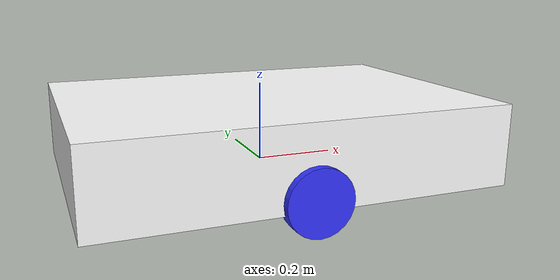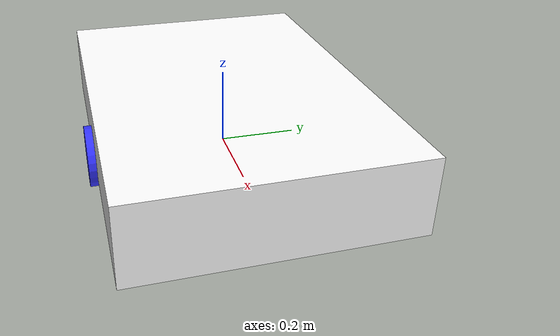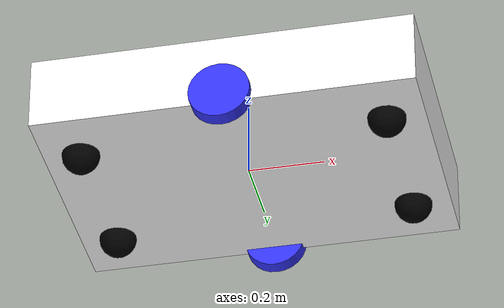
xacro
<?xml version="1.0"?>
<robot xmlns:xacro="http://www.ros.org/wiki/xacro">

    <xacro:include filename="inertial_macros.xacro"/>

    <material name="white">
        <color rgba="1 1 1 1" />
    </material>

    <material name="orange">
        <color rgba="1 0.3 0.1 1" />
    </material>

    <material name="blue">
        <color rgba="0.2 0.2 1 1" />
    </material>

    <material name="black">
        <color rgba="0 0 0 1" />
    </material>

    <material name="red">
        <color rgba="1 0 0 1" />
    </material>

    <!-- BASE LINK -->

    <link name="base_link">
	<origin xyz="0 0 0" />
    </link>

    <!-- CHASSIS LINK -->

    <joint name="chassis_joint" type="fixed">
        <parent link="base_link" />
        <child link="chassis" />
        <origin xyz="0 0 -0.025" />
    </joint>

    <link name="chassis">
        <visual>
            <origin xyz="0 0 0.1" />
            <geometry>
                <box size="1 0.7 0.2" />
            </geometry>
            <material name="white" />
        </visual>
        <collision>
            <origin xyz="0 0 0.1" />
            <geometry>
                <box size="1 0.7 0.2" />
            </geometry>
        </collision>
        <xacro:inertial_box mass="50" x="1" y="0.7" z="0.2">
            <origin xyz="0 0 0" rpy="0 0 0" />
        </xacro:inertial_box>
    </link>

    <gazebo reference="chassis">
	    <material>Gazebo/White</material>
    </gazebo>

    <!-- LEFT WHEEL LINK -->

    <joint name="left_wheel_joint" type="continuous">
        <parent link="base_link" />
        <child link="left_wheel" />
        <origin xyz="0 0.35 0" rpy="-${pi/2} 0 0" />
        <axis xyz="0 0 1" />
    </joint>

    <link name="left_wheel">
        <visual>
            <geometry>
                <cylinder radius="0.08" length="0.04" />
            </geometry>
            <material name="blue" />
        </visual>
        <collision>
            <geometry>
                <cylinder radius="0.08" length="0.04" />
            </geometry>
        </collision>
        <xacro:inertial_cylinder mass="5" length="0.04" radius="0.08">
            <origin xyz="0 0 0" rpy="0 0 0" />
        </xacro:inertial_cylinder>
    </link>

    <gazebo reference="left_wheel">
	    <material>Gazebo/Blue</material>
    </gazebo>

    <!-- RIGHT WHEEL LINK -->

    <joint name="right_wheel_joint" type="continuous">
        <parent link="base_link" />
        <child link="right_wheel" />
        <origin xyz="0 -0.35 0" rpy="${pi/2} 0 0" />
        <axis xyz="0 0 -1" />
    </joint>

    <link name="right_wheel">
        <visual>
            <geometry>
                <cylinder radius="0.08" length="0.04" />
            </geometry>
            <material name="blue" />
        </visual>
        <collision>
            <geometry>
                <cylinder radius="0.08" length="0.04" />
            </geometry>
        </collision>
        <xacro:inertial_cylinder mass="5" length="0.04" radius="0.08">
            <origin xyz="0 0 0" rpy="0 0 0" />
        </xacro:inertial_cylinder>
    </link>

    <gazebo reference="right_wheel">
	    <material>Gazebo/Blue</material>
    </gazebo>

    <!-- CASTER WHEEL LINKS -->

    <!-- caster_wheel_joint_fl LINK -->

    <joint name="caster_wheel_joint_fl" type="fixed">
        <parent link="chassis" />
        <child link="caster_wheel_fl" />
        <origin xyz="0.4 0.2 -0.005" />
    </joint>

    <link name="caster_wheel_fl">
        <visual>
            <geometry>
                <sphere radius="0.05"/>
            </geometry>
            <material name="black" />
        </visual>
	<collision>
            <geometry>
                <sphere radius="0.05"/>
            </geometry>
        </collision>
	 <xacro:inertial_sphere mass="1" radius="0.05">
            <origin xyz="0 0 0" rpy="0 0 0" />
        </xacro:inertial_sphere>
    </link>

    <gazebo reference="caster_wheel_fl">
	    <material>Gazebo/Black</material>
        <mu1 value="0.001"></mu1>
        <mu2 value="0.001"></mu2>
    </gazebo>

 <!-- caster_wheel_joint_fr LINK -->

    <joint name="caster_wheel_joint_fr" type="fixed">
        <parent link="chassis" />
        <child link="caster_wheel_fr" />
        <origin xyz="0.4 -0.2 -0.005" />
    </joint>

    <link name="caster_wheel_fr">
        <visual>
            <geometry>
                <sphere radius="0.05"/>
            </geometry>
            <material name="black" />
        </visual>
	<collision>
            <geometry>
                <sphere radius="0.05"/>
            </geometry>
        </collision>
	<xacro:inertial_sphere mass="1" radius="0.05">
            <origin xyz="0 0 0" rpy="0 0 0" />
        </xacro:inertial_sphere>
    </link>

    <gazebo reference="caster_wheel_fr">
	    <material>Gazebo/Black</material>
        <mu1 value="0.001"></mu1>
        <mu2 value="0.001"></mu2>
    </gazebo>

 <!-- caster_wheel_joint_bl LINK -->

    <joint name="caster_wheel_joint_bl" type="fixed">
        <parent link="chassis" />
        <child link="caster_wheel_bl" />
        <origin xyz="-0.4 0.2 -0.005" />
    </joint>

    <link name="caster_wheel_bl">
        <visual>
            <geometry>
                <sphere radius="0.05"/>
            </geometry>
            <material name="black" />
        </visual>
	<collision>
            <geometry>
                <sphere radius="0.05"/>
            </geometry>
        </collision>
`	<xacro:inertial_sphere mass="1" radius="0.05">
            <origin xyz="0 0 0" rpy="0 0 0" />
        </xacro:inertial_sphere>
    </link>

    <gazebo reference="caster_wheel_bl">
	    <material>Gazebo/Black</material>
        <mu1 value="0.001"></mu1>
        <mu2 value="0.001"></mu2>
    </gazebo>

 <!-- caster_wheel_joint_br LINK -->

    <joint name="caster_wheel_joint_br" type="fixed">
        <parent link="chassis" />
        <child link="caster_wheel_br" />
        <origin xyz="-0.4 -0.2 -0.005" />
    </joint>

    <link name="caster_wheel_br">
        <visual>
            <geometry>
                <sphere radius="0.05"/>
            </geometry>
            <material name="black" />
        </visual>
	<collision>
            <geometry>
                <sphere radius="0.05"/>
            </geometry>
        </collision>
	<xacro:inertial_sphere mass="1" radius="0.05">
            <origin xyz="0 0 0" rpy="0 0 0" />
        </xacro:inertial_sphere>
    </link>

    <gazebo reference="caster_wheel_br">
	    <material>Gazebo/Black</material>
        <mu1 value="0.001"></mu1>
        <mu2 value="0.001"></mu2>
    </gazebo>

</robot>
